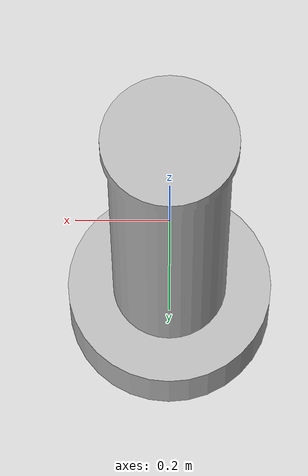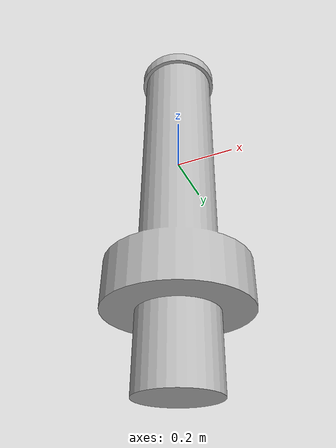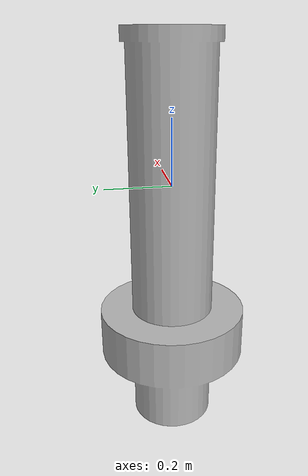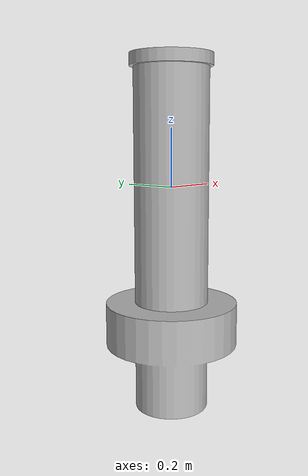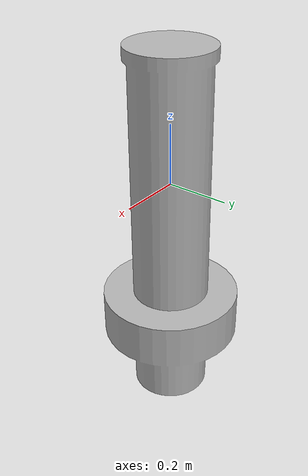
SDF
<?xml version="1.0" ?>
<sdf version="1.4">
  <model name="white_buoy">

    <link name="link">
      <collision name="collision">
        <geometry>
          <mesh>
            <uri>model://model/white_buoy/meshes/slow.dae</uri>
          </mesh>
        </geometry>
      </collision>
      <visual name="visual">
        <geometry>
          <mesh>
            <uri>model://model/white_buoy/meshes/slow.dae</uri>
          </mesh>
        </geometry>
        <material>
        <lighting>1</lighting>
	</material>
      </visual>
      <inertial>
       <mass>17</mass>
       <inertia>
          <ixx>40</ixx>
          <ixy>0</ixy>
          <ixz>0</ixz>
          <iyy>40</iyy>
          <iyz>0</iyz>
          <izz>40</izz>
       </inertia>
      </inertial>
    </link>
    <plugin name="BuoyancyPlugin" filename="libbuoyancy_gazebo_plugin.so">
      <fluid_density>1000</fluid_density>
      <fluid_level>0.0</fluid_level>
      <fluid_drag>50</fluid_drag>
      <link>
        <name>link</name>
        <center_of_volume>0 0 0.1</center_of_volume>
        <area>0.25</area>
        <height>0.9906</height>
      </link>
    </plugin>
  </model>
</sdf>
